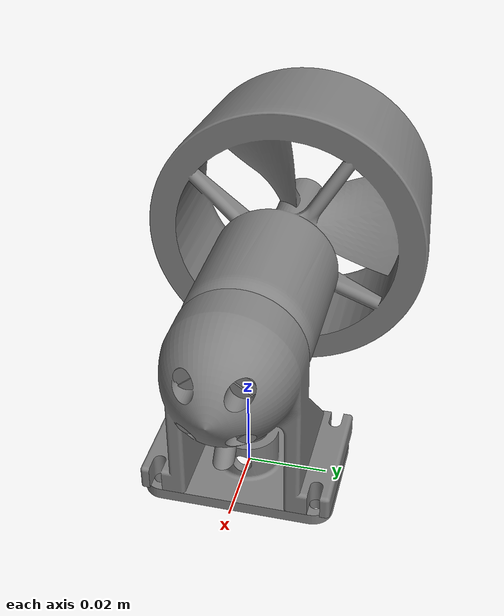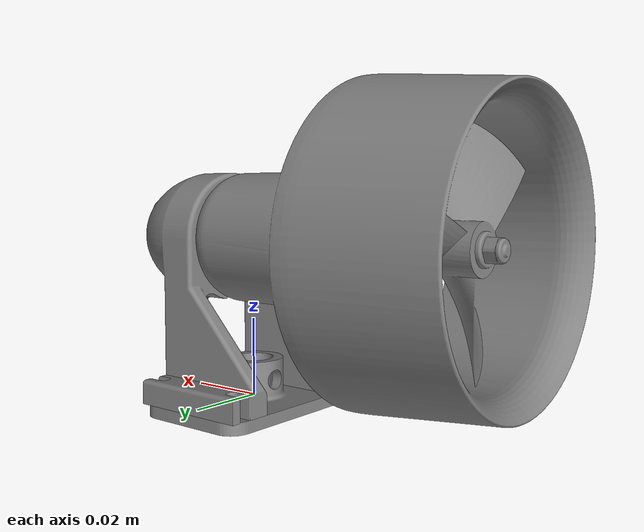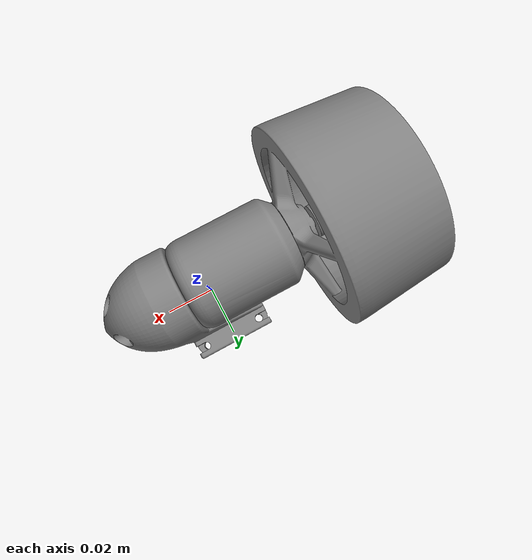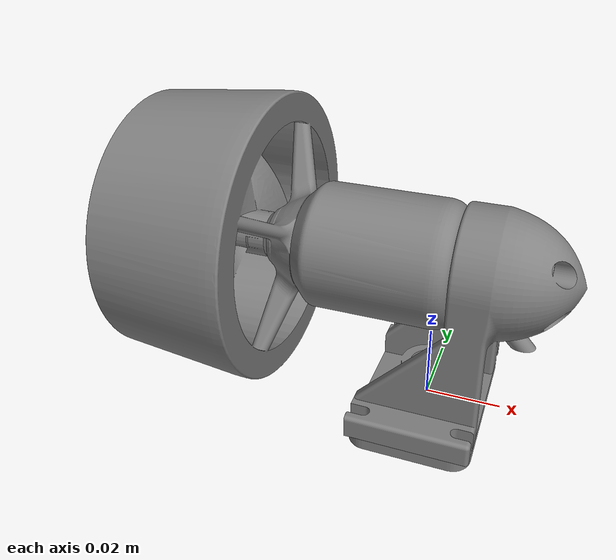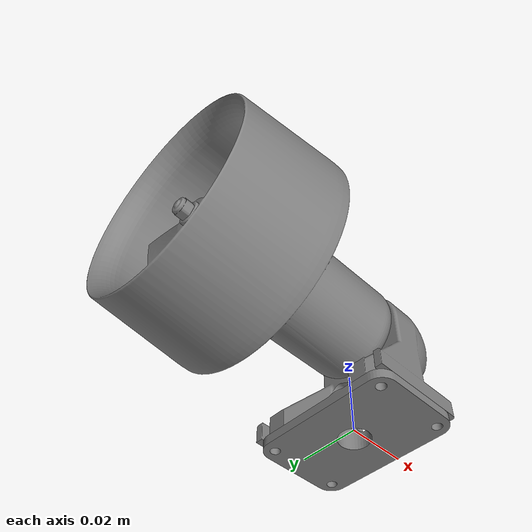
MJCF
<?xml version="1.0" encoding="UTF-8"?>
<mujoco>
<compiler meshdir="assets"/>
  <asset>
    <mesh file="auv___right_thruster_1__tui_jin_qi_di_zuo__1.stl"/>
    <mesh file="auv___right_thruster_1__tui_jin_qi___xiu_zheng_ban___1_m2_5_25_luo_shuan__1.stl"/>
    <mesh file="auv___right_thruster_1__tui_jin_qi___xiu_zheng_ban___1_m2_5_25_luo_shuan__2.stl"/>
    <mesh file="auv___right_thruster_1__tui_jin_qi___xiu_zheng_ban___1_m2_5_25_luo_shuan__3.stl"/>
    <mesh file="auv___right_thruster_1__tui_jin_qi___xiu_zheng_ban___1_m2_5_25_luo_shuan__4.stl"/>
    <mesh file="auv___right_thruster_1__tui_jin_qi___xiu_zheng_ban___1__tui_jin_qi___wu_zhi_jia___1.stl"/>
    <mesh file="auv___right_thruster_1__tui_jin_qi___xiu_zheng_ban___1__tui_jin_qi_zhi_jia___gai_jin_ban___1.stl"/>
  </asset>

  <default>
  <default class="right_thruster_default">
  <geom contype="0" conaffinity="0"/>
  </default>
  </default>

  <worldbody>
  <body name="right_thruster_body" pos="0 0 0">
    <geom type="mesh" mesh="auv___right_thruster_1__tui_jin_qi_di_zuo__1" mass="0.0405" class="right_thruster_default"/>
    <geom type="mesh" mesh="auv___right_thruster_1__tui_jin_qi___xiu_zheng_ban___1_m2_5_25_luo_shuan__1" mass="0.0001" class="right_thruster_default"/>
    <geom type="mesh" mesh="auv___right_thruster_1__tui_jin_qi___xiu_zheng_ban___1_m2_5_25_luo_shuan__2" mass="0.0001" class="right_thruster_default"/>
    <geom type="mesh" mesh="auv___right_thruster_1__tui_jin_qi___xiu_zheng_ban___1_m2_5_25_luo_shuan__3" mass="0.0001" class="right_thruster_default"/>
    <geom type="mesh" mesh="auv___right_thruster_1__tui_jin_qi___xiu_zheng_ban___1_m2_5_25_luo_shuan__4" mass="0.0001" class="right_thruster_default"/>
    <geom type="mesh" mesh="auv___right_thruster_1__tui_jin_qi___xiu_zheng_ban___1__tui_jin_qi___wu_zhi_jia___1" mass="0.1950" class="right_thruster_default"/>
    <geom type="mesh" mesh="auv___right_thruster_1__tui_jin_qi___xiu_zheng_ban___1__tui_jin_qi_zhi_jia___gai_jin_ban___1" mass="0.7490" class="right_thruster_default"/>
  </body>
  </worldbody>
</mujoco>
